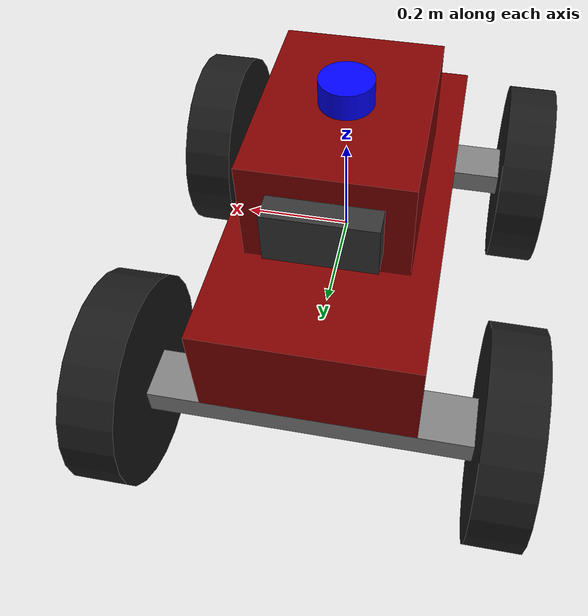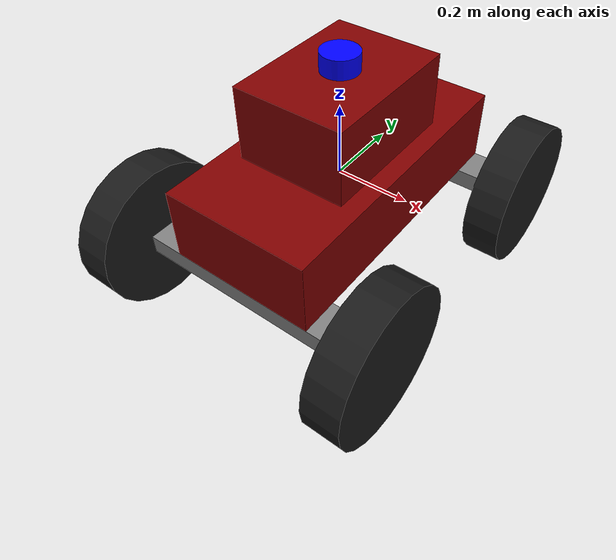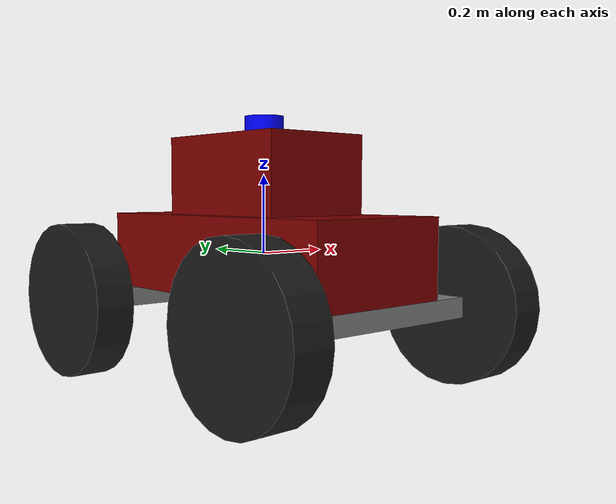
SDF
<sdf version='1.7'>
  <model name='car_suspension'>
    <link name='car_body'>
      <inertial>
        <pose>0 0 0 0 -0 0</pose>
        <mass>100</mass>
        <inertia>
          <ixx>10</ixx>
          <ixy>0</ixy>
          <ixz>0</ixz>
          <iyy>10</iyy>
          <iyz>0</iyz>
          <izz>10</izz>
        </inertia>
      </inertial>
      <collision name='car_body_collision'>
        <pose>0 0 0 0 -0 0</pose>
        <geometry>
          <box>
            <size>0.4 0.8 0.2</size>
          </box>
        </geometry>
      </collision>
      <visual name='car_body_visual'>
        <pose>0 0 0 0 -0 0</pose>
        <geometry>
          <box>
            <size>0.4 0.8 0.2</size>
          </box>
        </geometry>
        <material>
          <ambient>1 0 0 1</ambient>
          <diffuse>0.5 0 0 1</diffuse>
          <specular>1 1 1 1</specular>
        </material>
      </visual>
    </link>
    <joint name='suspension_back' type='prismatic'>
      <pose relative_to='car_body'>0 -0.35 0 0 -0 0</pose>
      <parent>car_body</parent>
      <child>back_wheel_body</child>
      <axis>
        <xyz>0 0 1</xyz>
        <limit>
          <lower>-0.05</lower>
          <upper>0.05</upper>
          <effort>10000</effort>
          <velocity>2</velocity>
        </limit>
        <dynamics>
          <damping>0.8</damping>
          <friction>0</friction>
          <spring_reference>0</spring_reference>
          <spring_stiffness>100</spring_stiffness>
        </dynamics>
      </axis>
    </joint>
    <link name='back_wheel_body'>
      <pose relative_to='suspension_back'>0 0 0 0 -0 0</pose>
      <inertial>
        <pose>0 0 0 0 -0 0</pose>
        <mass>1</mass>
        <inertia>
          <ixx>0.1</ixx>
          <ixy>0</ixy>
          <ixz>0</ixz>
          <iyy>0.1</iyy>
          <iyz>0</iyz>
          <izz>0.1</izz>
        </inertia>
      </inertial>
      <collision name='back_wheel_body_collision'>
        <pose>0 0 -0.125 0 -0 0</pose>
        <geometry>
          <box>
            <size>0.6 0.1 0.05</size>
          </box>
        </geometry>
      </collision>
      <visual name='back_wheel_body_visual'>
        <pose>0 0 -0.125 0 -0 0</pose>
        <geometry>
          <box>
            <size>0.6 0.1 0.05</size>
          </box>
        </geometry>
        <material>
          <ambient>0.5 0.5 0.5 1</ambient>
          <diffuse>0.5 0.5 0.5 1</diffuse>
          <specular>1 1 1 1</specular>
        </material>
      </visual>
    </link>
    <joint name='back_body_to_left_wheel' type='revolute'>
      <pose relative_to='back_wheel_body'>-0.3 0 -0.125 0 -0 0</pose>
      <parent>back_wheel_body</parent>
      <child>back_wheel_left</child>
      <axis>
        <xyz>1 0 0</xyz>
        <limit>
          <effort>10000</effort>
          <velocity>2</velocity>
          <lower>-1e+16</lower>
          <upper>1e+16</upper>
        </limit>
        <dynamics>
          <spring_reference>0</spring_reference>
          <spring_stiffness>0</spring_stiffness>
        </dynamics>
      </axis>
    </joint>
    <link name='back_wheel_left'>
      <pose relative_to='back_body_to_left_wheel'>0 0 0 0 -0 0</pose>
      <inertial>
        <pose>0 0 0 0 -0 0</pose>
        <mass>1</mass>
        <inertia>
          <ixx>0.1</ixx>
          <ixy>0</ixy>
          <ixz>0</ixz>
          <iyy>0.1</iyy>
          <iyz>0</iyz>
          <izz>0.1</izz>
        </inertia>
      </inertial>
      <collision name='back_wheel_left_collision'>
        <pose>-0.05 0 0 0 -1.5708 0</pose>
        <geometry>
          <cylinder>
            <length>0.1</length>
            <radius>0.2</radius>
          </cylinder>
        </geometry>
        <surface>
          <friction>
            <ode>
              <mu>0.7</mu>
              <mu2>0.7</mu2>
              <fdir1>1 0 0</fdir1>
            </ode>
          </friction>
          <contact>
            <ode>
              <kp>1e+13</kp>
              <kd>1</kd>
              <max_vel>10</max_vel>
            </ode>
          </contact>
          <bounce>
            <restitution_coefficient>0</restitution_coefficient>
            <threshold>0</threshold>
          </bounce>
        </surface>
      </collision>
      <visual name='back_wheel_left_visual'>
        <pose>-0.05 0 0 0 -1.5708 0</pose>
        <geometry>
          <cylinder>
            <length>0.1</length>
            <radius>0.2</radius>
          </cylinder>
        </geometry>
        <material>
          <ambient>0 0 0 1</ambient>
          <diffuse>0.1 0.1 0.1 1</diffuse>
          <specular>0 0 0 1</specular>
        </material>
      </visual>
    </link>
    <joint name='back_body_to_right_wheel' type='revolute'>
      <pose relative_to='back_wheel_body'>0.3 0 -0.125 0 -0 0</pose>
      <parent>back_wheel_body</parent>
      <child>back_wheel_right</child>
      <axis>
        <xyz>1 0 0</xyz>
        <limit>
          <effort>10000</effort>
          <velocity>2</velocity>
          <lower>-1e+16</lower>
          <upper>1e+16</upper>
        </limit>
        <dynamics>
          <spring_reference>0</spring_reference>
          <spring_stiffness>0</spring_stiffness>
        </dynamics>
      </axis>
    </joint>
    <link name='back_wheel_right'>
      <pose relative_to='back_body_to_right_wheel'>0 0 0 0 -0 0</pose>
      <inertial>
        <pose>0 0 0 0 -0 0</pose>
        <mass>1</mass>
        <inertia>
          <ixx>0.1</ixx>
          <ixy>0</ixy>
          <ixz>0</ixz>
          <iyy>0.1</iyy>
          <iyz>0</iyz>
          <izz>0.1</izz>
        </inertia>
      </inertial>
      <collision name='back_wheel_right_collision'>
        <pose>0.05 0 0 0 -1.5708 0</pose>
        <geometry>
          <cylinder>
            <length>0.1</length>
            <radius>0.2</radius>
          </cylinder>
        </geometry>
        <surface>
          <friction>
            <ode>
              <mu>0.7</mu>
              <mu2>0.7</mu2>
              <fdir1>1 0 0</fdir1>
            </ode>
          </friction>
          <contact>
            <ode>
              <kp>1e+13</kp>
              <kd>1</kd>
              <max_vel>10</max_vel>
            </ode>
          </contact>
          <bounce>
            <restitution_coefficient>0</restitution_coefficient>
            <threshold>0</threshold>
          </bounce>
        </surface>
      </collision>
      <visual name='back_wheel_right_visual'>
        <pose>0.05 0 0 0 -1.5708 0</pose>
        <geometry>
          <cylinder>
            <length>0.1</length>
            <radius>0.2</radius>
          </cylinder>
        </geometry>
        <material>
          <ambient>0 0 0 1</ambient>
          <diffuse>0.1 0.1 0.1 1</diffuse>
          <specular>0 0 0 1</specular>
        </material>
      </visual>
    </link>
    <joint name='suspension_front' type='prismatic'>
      <pose relative_to='car_body'>0 0.35 0 0 -0 0</pose>
      <parent>car_body</parent>
      <child>front_wheel_body</child>
      <axis>
        <xyz>0 0 1</xyz>
        <limit>
          <lower>-0.05</lower>
          <upper>0.05</upper>
          <effort>10000</effort>
          <velocity>2</velocity>
        </limit>
        <dynamics>
          <damping>0.8</damping>
          <friction>0</friction>
          <spring_reference>0</spring_reference>
          <spring_stiffness>100</spring_stiffness>
        </dynamics>
      </axis>
    </joint>
    <link name='front_wheel_body'>
      <pose relative_to='suspension_front'>0 0 0 0 -0 0</pose>
      <inertial>
        <pose>0 0 0 0 -0 0</pose>
        <mass>1</mass>
        <inertia>
          <ixx>0.1</ixx>
          <ixy>0</ixy>
          <ixz>0</ixz>
          <iyy>0.1</iyy>
          <iyz>0</iyz>
          <izz>0.1</izz>
        </inertia>
      </inertial>
      <collision name='front_wheel_body_collision'>
        <pose>0 0 -0.125 0 -0 0</pose>
        <geometry>
          <box>
            <size>0.6 0.1 0.05</size>
          </box>
        </geometry>
      </collision>
      <visual name='front_wheel_body_visual'>
        <pose>0 0 -0.125 0 -0 0</pose>
        <geometry>
          <box>
            <size>0.6 0.1 0.05</size>
          </box>
        </geometry>
        <material>
          <ambient>0.5 0.5 0.5 1</ambient>
          <diffuse>0.5 0.5 0.5 1</diffuse>
          <specular>1 1 1 1</specular>
        </material>
      </visual>
    </link>
    <joint name='front_body_to_left_wheel' type='revolute'>
      <pose relative_to='front_wheel_body'>-0.3 0 -0.125 0 -0 0</pose>
      <parent>front_wheel_body</parent>
      <child>front_wheel_left</child>
      <axis>
        <xyz>1 0 0</xyz>
        <limit>
          <effort>10000</effort>
          <velocity>2</velocity>
          <lower>-1e+16</lower>
          <upper>1e+16</upper>
        </limit>
        <dynamics>
          <spring_reference>0</spring_reference>
          <spring_stiffness>0</spring_stiffness>
        </dynamics>
      </axis>
    </joint>
    <link name='front_wheel_left'>
      <pose relative_to='front_body_to_left_wheel'>0 0 0 0 -0 0</pose>
      <inertial>
        <pose>0 0 0 0 -0 0</pose>
        <mass>1</mass>
        <inertia>
          <ixx>0.1</ixx>
          <ixy>0</ixy>
          <ixz>0</ixz>
          <iyy>0.1</iyy>
          <iyz>0</iyz>
          <izz>0.1</izz>
        </inertia>
      </inertial>
      <collision name='front_wheel_left_collision'>
        <pose>-0.05 0 0 0 -1.5708 0</pose>
        <geometry>
          <cylinder>
            <length>0.1</length>
            <radius>0.2</radius>
          </cylinder>
        </geometry>
        <surface>
          <friction>
            <ode>
              <mu>0.7</mu>
              <mu2>0.7</mu2>
              <fdir1>1 0 0</fdir1>
            </ode>
          </friction>
          <contact>
            <ode>
              <kp>1e+13</kp>
              <kd>1</kd>
              <max_vel>10</max_vel>
            </ode>
          </contact>
          <bounce>
            <restitution_coefficient>0</restitution_coefficient>
            <threshold>0</threshold>
          </bounce>
        </surface>
      </collision>
      <visual name='front_wheel_left_visual'>
        <pose>-0.05 0 0 0 -1.5708 0</pose>
        <geometry>
          <cylinder>
            <length>0.1</length>
            <radius>0.2</radius>
          </cylinder>
        </geometry>
        <material>
          <ambient>0 0 0 1</ambient>
          <diffuse>0.1 0.1 0.1 1</diffuse>
          <specular>0 0 0 1</specular>
        </material>
      </visual>
    </link>
    <joint name='front_body_to_right_wheel' type='revolute'>
      <pose relative_to='front_wheel_body'>0.3 0 -0.125 0 -0 0</pose>
      <parent>front_wheel_body</parent>
      <child>front_wheel_right</child>
      <axis>
        <xyz>1 0 0</xyz>
        <limit>
          <effort>10000</effort>
          <velocity>2</velocity>
          <lower>-1e+16</lower>
          <upper>1e+16</upper>
        </limit>
        <dynamics>
          <spring_reference>0</spring_reference>
          <spring_stiffness>0</spring_stiffness>
        </dynamics>
      </axis>
    </joint>
    <link name='front_wheel_right'>
      <pose relative_to='front_body_to_right_wheel'>0 0 0 0 -0 0</pose>
      <inertial>
        <pose>0 0 0 0 -0 0</pose>
        <mass>1</mass>
        <inertia>
          <ixx>0.1</ixx>
          <ixy>0</ixy>
          <ixz>0</ixz>
          <iyy>0.1</iyy>
          <iyz>0</iyz>
          <izz>0.1</izz>
        </inertia>
      </inertial>
      <collision name='front_wheel_right_collision'>
        <pose>0.05 0 0 0 -1.5708 0</pose>
        <geometry>
          <cylinder>
            <length>0.1</length>
            <radius>0.2</radius>
          </cylinder>
        </geometry>
        <surface>
          <friction>
            <ode>
              <mu>0.7</mu>
              <mu2>0.7</mu2>
              <fdir1>1 0 0</fdir1>
            </ode>
          </friction>
          <contact>
            <ode>
              <kp>1e+13</kp>
              <kd>1</kd>
              <max_vel>10</max_vel>
            </ode>
          </contact>
          <bounce>
            <restitution_coefficient>0</restitution_coefficient>
            <threshold>0</threshold>
          </bounce>
        </surface>
      </collision>
      <visual name='front_wheel_right_visual'>
        <pose>0.05 0 0 0 -1.5708 0</pose>
        <geometry>
          <cylinder>
            <length>0.1</length>
            <radius>0.2</radius>
          </cylinder>
        </geometry>
        <material>
          <ambient>0 0 0 1</ambient>
          <diffuse>0.1 0.1 0.1 1</diffuse>
          <specular>0 0 0 1</specular>
        </material>
      </visual>
    </link>

    <joint name='body_to_head' type='fixed'>
      <pose relative_to='car_body'>0 0 0.2 0 0 0</pose>
      <parent>car_body</parent>
      <child>car_head</child>
    </joint>

    <link name='car_head'>
      <pose relative_to='car_body'>0 0 0.2 0 0 0</pose>
      <inertial>
        <pose>0 0 0 0 0 0</pose>
        <mass>1</mass>
        <inertia>
          <ixx>0.1</ixx>
          <ixy>0</ixy>
          <ixz>0</ixz>
          <iyy>0.1</iyy>
          <iyz>0</iyz>
          <izz>0.1</izz>
        </inertia>
      </inertial>
      <collision name='car_head_collision'>
        <pose>0 0 0 0 0 0</pose>
        <geometry>
          <box>
            <size>0.3 0.4 0.2</size>
          </box>
        </geometry>
      </collision>
      <visual name='car_head_visual'>
        <pose>0 0 0 0 0 0</pose>
        <geometry>
          <box>
            <size>0.3 0.4 0.2</size>
          </box>
        </geometry>
        <material>
          <ambient>1 0 0 1</ambient>
          <diffuse>0.5 0 0 1</diffuse>
          <specular>1 1 1 1</specular>
        </material>
      </visual>
    </link>

    <joint name='head_to_ray' type='fixed'>
      <pose relative_to='car_head'>0 0 0.125 0 0 0</pose>
      <parent>car_head</parent>
      <child>ray_sensor</child>
    </joint>

    <link name='ray_sensor'>
      <pose relative_to='car_head'>0 0 0.125 0 0 0</pose>
      <visual name='ray_sensor_visual'>
        <pose>0 0 0 0 0 0</pose>
        <geometry>
          <cylinder>
            <radius>0.05</radius>
            <length>0.05</length>
          </cylinder>
        </geometry>
        <material>
          <ambient>0 0 1 1</ambient>
          <diffuse>0 0 1 1</diffuse>
          <specular>0 0 1 1</specular>
        </material>
      </visual>
      <!-- ray sensor -->
      <sensor name="ray_sensor_ray" type="ray">
        <visualize>true</visualize>

        <ray>
          <scan>
            <horizontal>
              <samples>36</samples>
              <resolution>1.0</resolution>
              <min_angle>-2.9670597</min_angle> <!-- - pi + pi /18 -->
              <max_angle>3.14159265</max_angle>
            </horizontal>
            <vertical>
              <samples>1</samples>
              <resolution>1.0</resolution>
              <min_angle>0</min_angle>
              <max_angle>0</max_angle>
            </vertical>
          </scan>
          <range>
            <min>0.05</min>
            <max>50.0</max>
          </range>
        </ray>

        <always_on>true</always_on>

        <update_rate>10.0</update_rate>

        <plugin name="gazebo_ros_ray_sensor" filename="libgazebo_ros_ray_sensor.so">
          <ros>
            <namespace>/ray</namespace>
            <argument>~/out:=pointcloud</argument>
          </ros>
          <frame_name>map</frame_name>
          <output_type>sensor_msgs/PointCloud</output_type>
        </plugin>

        <plugin name="laserscan" filename="libgazebo_ros_ray_sensor.so">
          <ros>
            <namespace>/ray</namespace>
            <argument>~/out:=laserscan</argument>
          </ros>
          <frame_name>map</frame_name>
          <output_type>sensor_msgs/LaserScan</output_type>
        </plugin>

      </sensor>
    </link>

    <!-- head to camera joint -->
    <joint name='head_to_camera' type='fixed'>
      <pose relative_to='car_head'>0 0.225 0 0 0 1.5708</pose>
      <parent>car_head</parent>
      <child>camera_sensor</child>
    </joint>

    <!-- camera link with sensor -->
    <link name="camera_sensor">
        <pose relative_to='car_head'>0 0.225 0 0 0 1.5708</pose>
        <visual name='ray_sensor_visual'>
          <pose>0 0 0 0 0 0</pose>
          <geometry>
            <box>
              <size>0.05 0.2 0.1</size>
            </box>
          </geometry>
          <material>
            <ambient>0 0 0 1</ambient>
            <diffuse>0.2 0.2 0.2 1</diffuse>
            <specular>1 1 1 1</specular>
          </material>
        </visual>
        <sensor type="camera" name="camera">
          <camera>
            <horizontal_fov>1.047</horizontal_fov>
            <image>
              <width>320</width>
              <height>240</height>
            </image>
            <clip>
              <near>0.1</near>
              <far>100</far>
            </clip>
          </camera>
          <update_rate>10</update_rate>

          <plugin name="plugin_name" filename="libgazebo_ros_camera.so">
            <ros>
              <namespace>custom_ns</namespace>
              <remapping>image_raw:=custom_img</remapping>
            </ros>
            <camera_name>custom_camera</camera_name>
            <frame_name>map</frame_name>
          </plugin>
        </sensor>
      </link>

  </model>
</sdf>
